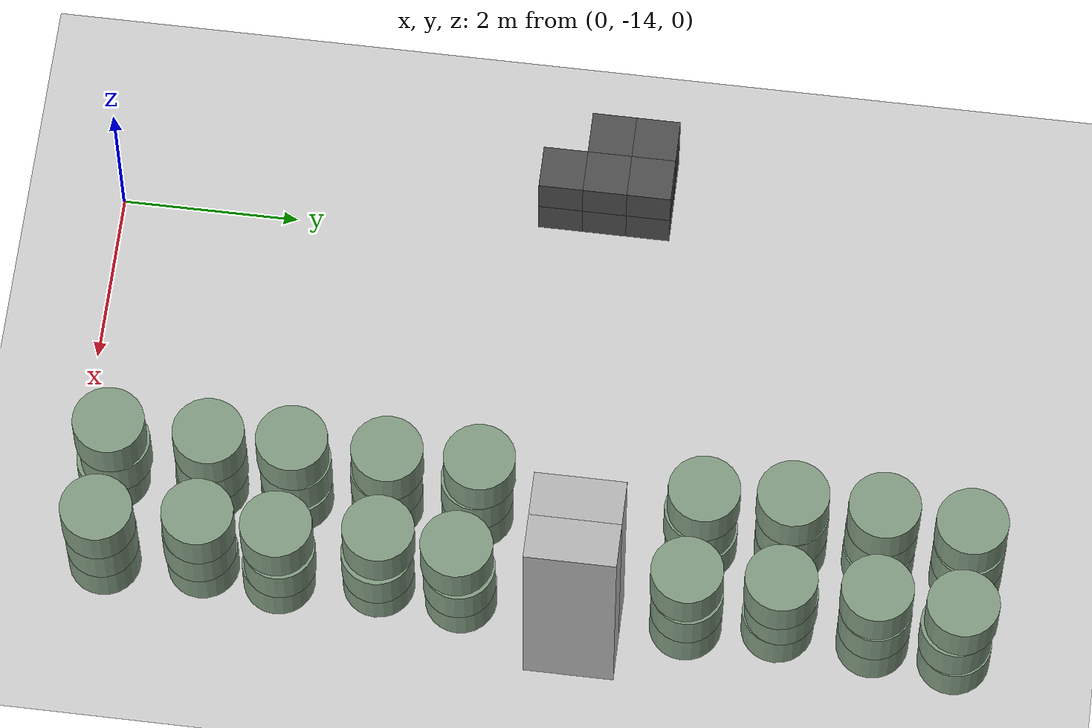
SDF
<sdf version="1.6">
 <world name="default">
  <include><uri>model://ground_plane</uri></include>
  <model name="wall_7">
   <pose>4.5 -8.25 1.5 0 -0 0</pose>
   <static>True</static>
   <link name="link">
    <inertial>
     <mass>100</mass>
     <inertia>
      <ixx>0.166667</ixx>
      <ixy>0</ixy>
      <ixz>0</ixz>
      <iyy>0.166667</iyy>
      <iyz>0</iyz>
      <izz>0.166667</izz>
     </inertia>
    </inertial>
    <collision name="collision"><geometry><box><size>0.5 1.0 3.0</size></box></geometry></collision>
    <visual name="visual">
     <geometry><box><size>0.5 1.0 3.0</size></box></geometry>
     <material><ambient>0.7 0.7 0.7 1</ambient><diffuse>0.7 0.7 0.7 1</diffuse></material>
    </visual>
   </link>
  </model>
  <model name="wall_10">
   <pose>5.0 -8.25 1.5 0 -0 0</pose>
   <static>True</static>
   <link name="link">
    <inertial>
     <mass>100</mass>
     <inertia>
      <ixx>0.166667</ixx>
      <ixy>0</ixy>
      <ixz>0</ixz>
      <iyy>0.166667</iyy>
      <iyz>0</iyz>
      <izz>0.166667</izz>
     </inertia>
    </inertial>
    <collision name="collision"><geometry><box><size>0.5 1.0 3.0</size></box></geometry></collision>
    <visual name="visual">
     <geometry><box><size>0.5 1.0 3.0</size></box></geometry>
     <material><ambient>0.7 0.7 0.7 1</ambient><diffuse>0.7 0.7 0.7 1</diffuse></material>
    </visual>
   </link>
  </model>
  <model name="unit_box_13">
   <pose>-1.0 -8.5 0.75 0 -0 0</pose>
   <static>True</static>
   <link name="link">
    <inertial>
     <mass>100</mass>
     <inertia>
      <ixx>0.166667</ixx>
      <ixy>0</ixy>
      <ixz>0</ixz>
      <iyy>0.166667</iyy>
      <iyz>0</iyz>
      <izz>0.166667</izz>
     </inertia>
    </inertial>
    <collision name="collision"><geometry><box><size>0.5 0.5 0.5</size></box></geometry></collision>
    <visual name="visual">
     <geometry><box><size>0.5 0.5 0.5</size></box></geometry>
     <material><ambient>0.3 0.3 0.3 1</ambient><diffuse>0.3 0.3 0.3 1</diffuse></material>
    </visual>
   </link>
  </model>
  <model name="unit_box_14">
   <pose>-1.0 -8.0 0.25 0 -0 0</pose>
   <static>True</static>
   <link name="link">
    <inertial>
     <mass>100</mass>
     <inertia>
      <ixx>0.166667</ixx>
      <ixy>0</ixy>
      <ixz>0</ixz>
      <iyy>0.166667</iyy>
      <iyz>0</iyz>
      <izz>0.166667</izz>
     </inertia>
    </inertial>
    <collision name="collision"><geometry><box><size>0.5 0.5 0.5</size></box></geometry></collision>
    <visual name="visual">
     <geometry><box><size>0.5 0.5 0.5</size></box></geometry>
     <material><ambient>0.3 0.3 0.3 1</ambient><diffuse>0.3 0.3 0.3 1</diffuse></material>
    </visual>
   </link>
  </model>
  <model name="unit_box_15">
   <pose>-1.0 -8.0 0.75 0 -0 0</pose>
   <static>True</static>
   <link name="link">
    <inertial>
     <mass>100</mass>
     <inertia>
      <ixx>0.166667</ixx>
      <ixy>0</ixy>
      <ixz>0</ixz>
      <iyy>0.166667</iyy>
      <iyz>0</iyz>
      <izz>0.166667</izz>
     </inertia>
    </inertial>
    <collision name="collision"><geometry><box><size>0.5 0.5 0.5</size></box></geometry></collision>
    <visual name="visual">
     <geometry><box><size>0.5 0.5 0.5</size></box></geometry>
     <material><ambient>0.3 0.3 0.3 1</ambient><diffuse>0.3 0.3 0.3 1</diffuse></material>
    </visual>
   </link>
  </model>
  <model name="unit_box_16">
   <pose>-0.5 -9.0 0.25 0 -0 0</pose>
   <static>True</static>
   <link name="link">
    <inertial>
     <mass>100</mass>
     <inertia>
      <ixx>0.166667</ixx>
      <ixy>0</ixy>
      <ixz>0</ixz>
      <iyy>0.166667</iyy>
      <iyz>0</iyz>
      <izz>0.166667</izz>
     </inertia>
    </inertial>
    <collision name="collision"><geometry><box><size>0.5 0.5 0.5</size></box></geometry></collision>
    <visual name="visual">
     <geometry><box><size>0.5 0.5 0.5</size></box></geometry>
     <material><ambient>0.3 0.3 0.3 1</ambient><diffuse>0.3 0.3 0.3 1</diffuse></material>
    </visual>
   </link>
  </model>
  <model name="unit_box_17">
   <pose>-0.5 -9.0 0.75 0 -0 0</pose>
   <static>True</static>
   <link name="link">
    <inertial>
     <mass>100</mass>
     <inertia>
      <ixx>0.166667</ixx>
      <ixy>0</ixy>
      <ixz>0</ixz>
      <iyy>0.166667</iyy>
      <iyz>0</iyz>
      <izz>0.166667</izz>
     </inertia>
    </inertial>
    <collision name="collision"><geometry><box><size>0.5 0.5 0.5</size></box></geometry></collision>
    <visual name="visual">
     <geometry><box><size>0.5 0.5 0.5</size></box></geometry>
     <material><ambient>0.3 0.3 0.3 1</ambient><diffuse>0.3 0.3 0.3 1</diffuse></material>
    </visual>
   </link>
  </model>
  <model name="unit_box_18">
   <pose>-0.5 -8.5 0.25 0 -0 0</pose>
   <static>True</static>
   <link name="link">
    <inertial>
     <mass>100</mass>
     <inertia>
      <ixx>0.166667</ixx>
      <ixy>0</ixy>
      <ixz>0</ixz>
      <iyy>0.166667</iyy>
      <iyz>0</iyz>
      <izz>0.166667</izz>
     </inertia>
    </inertial>
    <collision name="collision"><geometry><box><size>0.5 0.5 0.5</size></box></geometry></collision>
    <visual name="visual">
     <geometry><box><size>0.5 0.5 0.5</size></box></geometry>
     <material><ambient>0.3 0.3 0.3 1</ambient><diffuse>0.3 0.3 0.3 1</diffuse></material>
    </visual>
   </link>
  </model>
  <model name="unit_box_19">
   <pose>-0.5 -8.5 0.75 0 -0 0</pose>
   <static>True</static>
   <link name="link">
    <inertial>
     <mass>100</mass>
     <inertia>
      <ixx>0.166667</ixx>
      <ixy>0</ixy>
      <ixz>0</ixz>
      <iyy>0.166667</iyy>
      <iyz>0</iyz>
      <izz>0.166667</izz>
     </inertia>
    </inertial>
    <collision name="collision"><geometry><box><size>0.5 0.5 0.5</size></box></geometry></collision>
    <visual name="visual">
     <geometry><box><size>0.5 0.5 0.5</size></box></geometry>
     <material><ambient>0.3 0.3 0.3 1</ambient><diffuse>0.3 0.3 0.3 1</diffuse></material>
    </visual>
   </link>
  </model>
  <model name="unit_box_20">
   <pose>-0.5 -8.0 0.25 0 -0 0</pose>
   <static>True</static>
   <link name="link">
    <inertial>
     <mass>100</mass>
     <inertia>
      <ixx>0.166667</ixx>
      <ixy>0</ixy>
      <ixz>0</ixz>
      <iyy>0.166667</iyy>
      <iyz>0</iyz>
      <izz>0.166667</izz>
     </inertia>
    </inertial>
    <collision name="collision"><geometry><box><size>0.5 0.5 0.5</size></box></geometry></collision>
    <visual name="visual">
     <geometry><box><size>0.5 0.5 0.5</size></box></geometry>
     <material><ambient>0.3 0.3 0.3 1</ambient><diffuse>0.3 0.3 0.3 1</diffuse></material>
    </visual>
   </link>
  </model>
  <model name="unit_box_21">
   <pose>-0.5 -8.0 0.75 0 -0 0</pose>
   <static>True</static>
   <link name="link">
    <inertial>
     <mass>100</mass>
     <inertia>
      <ixx>0.166667</ixx>
      <ixy>0</ixy>
      <ixz>0</ixz>
      <iyy>0.166667</iyy>
      <iyz>0</iyz>
      <izz>0.166667</izz>
     </inertia>
    </inertial>
    <collision name="collision"><geometry><box><size>0.5 0.5 0.5</size></box></geometry></collision>
    <visual name="visual">
     <geometry><box><size>0.5 0.5 0.5</size></box></geometry>
     <material><ambient>0.3 0.3 0.3 1</ambient><diffuse>0.3 0.3 0.3 1</diffuse></material>
    </visual>
   </link>
  </model>
  <model name="unit_cylinder_120">
   <pose>3.48192407401 -13.5750649332 0.25 0 -0 0</pose>
   <static>True</static>
   <link name="link">
    <inertial>
     <mass>100</mass>
     <inertia><ixx>0.145833</ixx><ixy>0</ixy><ixz>0</ixz><iyy>0.145833</iyy><iyz>0</iyz><izz>0.125</izz></inertia>
    </inertial>
    <collision name="collision">
     <geometry><cylinder><radius>0.4</radius><length>0.5</length></cylinder></geometry>
     <max_contacts>100</max_contacts>
    </collision>
    <visual name="visual">
     <geometry><cylinder><radius>0.4</radius><length>0.5</length></cylinder></geometry>
     <material><ambient>0.5 0.6 0.5 1</ambient><diffuse>0.5 0.6 0.5 1</diffuse></material>
    </visual>
   </link>
  </model>
  <model name="unit_cylinder_121">
   <pose>3.47401796604 -13.5263370042 0.75 0 -0 0</pose>
   <static>True</static>
   <link name="link">
    <inertial>
     <mass>100</mass>
     <inertia><ixx>0.145833</ixx><ixy>0</ixy><ixz>0</ixz><iyy>0.145833</iyy><iyz>0</iyz><izz>0.125</izz></inertia>
    </inertial>
    <collision name="collision">
     <geometry><cylinder><radius>0.4</radius><length>0.5</length></cylinder></geometry>
     <max_contacts>100</max_contacts>
    </collision>
    <visual name="visual">
     <geometry><cylinder><radius>0.4</radius><length>0.5</length></cylinder></geometry>
     <material><ambient>0.5 0.6 0.5 1</ambient><diffuse>0.5 0.6 0.5 1</diffuse></material>
    </visual>
   </link>
  </model>
  <model name="unit_cylinder_122">
   <pose>3.48458854449 -13.5596657522 1.25 0 -0 0</pose>
   <static>True</static>
   <link name="link">
    <inertial>
     <mass>100</mass>
     <inertia><ixx>0.145833</ixx><ixy>0</ixy><ixz>0</ixz><iyy>0.145833</iyy><iyz>0</iyz><izz>0.125</izz></inertia>
    </inertial>
    <collision name="collision">
     <geometry><cylinder><radius>0.4</radius><length>0.5</length></cylinder></geometry>
     <max_contacts>100</max_contacts>
    </collision>
    <visual name="visual">
     <geometry><cylinder><radius>0.4</radius><length>0.5</length></cylinder></geometry>
     <material><ambient>0.5 0.6 0.5 1</ambient><diffuse>0.5 0.6 0.5 1</diffuse></material>
    </visual>
   </link>
  </model>
  <model name="unit_cylinder_123">
   <pose>3.47593592255 -12.46389825 0.25 0 -0 0</pose>
   <static>True</static>
   <link name="link">
    <inertial>
     <mass>100</mass>
     <inertia><ixx>0.145833</ixx><ixy>0</ixy><ixz>0</ixz><iyy>0.145833</iyy><iyz>0</iyz><izz>0.125</izz></inertia>
    </inertial>
    <collision name="collision">
     <geometry><cylinder><radius>0.4</radius><length>0.5</length></cylinder></geometry>
     <max_contacts>100</max_contacts>
    </collision>
    <visual name="visual">
     <geometry><cylinder><radius>0.4</radius><length>0.5</length></cylinder></geometry>
     <material><ambient>0.5 0.6 0.5 1</ambient><diffuse>0.5 0.6 0.5 1</diffuse></material>
    </visual>
   </link>
  </model>
  <model name="unit_cylinder_124">
   <pose>3.47823268688 -12.4491039058 0.75 0 -0 0</pose>
   <static>True</static>
   <link name="link">
    <inertial>
     <mass>100</mass>
     <inertia><ixx>0.145833</ixx><ixy>0</ixy><ixz>0</ixz><iyy>0.145833</iyy><iyz>0</iyz><izz>0.125</izz></inertia>
    </inertial>
    <collision name="collision">
     <geometry><cylinder><radius>0.4</radius><length>0.5</length></cylinder></geometry>
     <max_contacts>100</max_contacts>
    </collision>
    <visual name="visual">
     <geometry><cylinder><radius>0.4</radius><length>0.5</length></cylinder></geometry>
     <material><ambient>0.5 0.6 0.5 1</ambient><diffuse>0.5 0.6 0.5 1</diffuse></material>
    </visual>
   </link>
  </model>
  <model name="unit_cylinder_125">
   <pose>3.48412935911 -12.4509701474 1.25 0 -0 0</pose>
   <static>True</static>
   <link name="link">
    <inertial>
     <mass>100</mass>
     <inertia><ixx>0.145833</ixx><ixy>0</ixy><ixz>0</ixz><iyy>0.145833</iyy><iyz>0</iyz><izz>0.125</izz></inertia>
    </inertial>
    <collision name="collision">
     <geometry><cylinder><radius>0.4</radius><length>0.5</length></cylinder></geometry>
     <max_contacts>100</max_contacts>
    </collision>
    <visual name="visual">
     <geometry><cylinder><radius>0.4</radius><length>0.5</length></cylinder></geometry>
     <material><ambient>0.5 0.6 0.5 1</ambient><diffuse>0.5 0.6 0.5 1</diffuse></material>
    </visual>
   </link>
  </model>
  <model name="unit_cylinder_126">
   <pose>3.49154359732 -11.5032886017 0.25 0 -0 0</pose>
   <static>True</static>
   <link name="link">
    <inertial>
     <mass>100</mass>
     <inertia><ixx>0.145833</ixx><ixy>0</ixy><ixz>0</ixz><iyy>0.145833</iyy><iyz>0</iyz><izz>0.125</izz></inertia>
    </inertial>
    <collision name="collision">
     <geometry><cylinder><radius>0.4</radius><length>0.5</length></cylinder></geometry>
     <max_contacts>100</max_contacts>
    </collision>
    <visual name="visual">
     <geometry><cylinder><radius>0.4</radius><length>0.5</length></cylinder></geometry>
     <material><ambient>0.5 0.6 0.5 1</ambient><diffuse>0.5 0.6 0.5 1</diffuse></material>
    </visual>
   </link>
  </model>
  <model name="unit_cylinder_127">
   <pose>3.45846605834 -11.5073807653 0.75 0 -0 0</pose>
   <static>True</static>
   <link name="link">
    <inertial>
     <mass>100</mass>
     <inertia><ixx>0.145833</ixx><ixy>0</ixy><ixz>0</ixz><iyy>0.145833</iyy><iyz>0</iyz><izz>0.125</izz></inertia>
    </inertial>
    <collision name="collision">
     <geometry><cylinder><radius>0.4</radius><length>0.5</length></cylinder></geometry>
     <max_contacts>100</max_contacts>
    </collision>
    <visual name="visual">
     <geometry><cylinder><radius>0.4</radius><length>0.5</length></cylinder></geometry>
     <material><ambient>0.5 0.6 0.5 1</ambient><diffuse>0.5 0.6 0.5 1</diffuse></material>
    </visual>
   </link>
  </model>
  <model name="unit_cylinder_128">
   <pose>3.4563674604 -11.529332179 1.25 0 -0 0</pose>
   <static>True</static>
   <link name="link">
    <inertial>
     <mass>100</mass>
     <inertia><ixx>0.145833</ixx><ixy>0</ixy><ixz>0</ixz><iyy>0.145833</iyy><iyz>0</iyz><izz>0.125</izz></inertia>
    </inertial>
    <collision name="collision">
     <geometry><cylinder><radius>0.4</radius><length>0.5</length></cylinder></geometry>
     <max_contacts>100</max_contacts>
    </collision>
    <visual name="visual">
     <geometry><cylinder><radius>0.4</radius><length>0.5</length></cylinder></geometry>
     <material><ambient>0.5 0.6 0.5 1</ambient><diffuse>0.5 0.6 0.5 1</diffuse></material>
    </visual>
   </link>
  </model>
  <model name="unit_cylinder_129">
   <pose>3.45605927445 -10.4935702904 0.25 0 -0 0</pose>
   <static>True</static>
   <link name="link">
    <inertial>
     <mass>100</mass>
     <inertia><ixx>0.145833</ixx><ixy>0</ixy><ixz>0</ixz><iyy>0.145833</iyy><iyz>0</iyz><izz>0.125</izz></inertia>
    </inertial>
    <collision name="collision">
     <geometry><cylinder><radius>0.4</radius><length>0.5</length></cylinder></geometry>
     <max_contacts>100</max_contacts>
    </collision>
    <visual name="visual">
     <geometry><cylinder><radius>0.4</radius><length>0.5</length></cylinder></geometry>
     <material><ambient>0.5 0.6 0.5 1</ambient><diffuse>0.5 0.6 0.5 1</diffuse></material>
    </visual>
   </link>
  </model>
  <model name="unit_cylinder_130">
   <pose>3.462295615 -10.4932018744 0.75 0 -0 0</pose>
   <static>True</static>
   <link name="link">
    <inertial>
     <mass>100</mass>
     <inertia><ixx>0.145833</ixx><ixy>0</ixy><ixz>0</ixz><iyy>0.145833</iyy><iyz>0</iyz><izz>0.125</izz></inertia>
    </inertial>
    <collision name="collision">
     <geometry><cylinder><radius>0.4</radius><length>0.5</length></cylinder></geometry>
     <max_contacts>100</max_contacts>
    </collision>
    <visual name="visual">
     <geometry><cylinder><radius>0.4</radius><length>0.5</length></cylinder></geometry>
     <material><ambient>0.5 0.6 0.5 1</ambient><diffuse>0.5 0.6 0.5 1</diffuse></material>
    </visual>
   </link>
  </model>
  <model name="unit_cylinder_131">
   <pose>3.4603107666 -10.4735236708 1.25 0 -0 0</pose>
   <static>True</static>
   <link name="link">
    <inertial>
     <mass>100</mass>
     <inertia><ixx>0.145833</ixx><ixy>0</ixy><ixz>0</ixz><iyy>0.145833</iyy><iyz>0</iyz><izz>0.125</izz></inertia>
    </inertial>
    <collision name="collision">
     <geometry><cylinder><radius>0.4</radius><length>0.5</length></cylinder></geometry>
     <max_contacts>100</max_contacts>
    </collision>
    <visual name="visual">
     <geometry><cylinder><radius>0.4</radius><length>0.5</length></cylinder></geometry>
     <material><ambient>0.5 0.6 0.5 1</ambient><diffuse>0.5 0.6 0.5 1</diffuse></material>
    </visual>
   </link>
  </model>
  <model name="unit_cylinder_132">
   <pose>3.45102213264 -9.48496383676 0.25 0 -0 0</pose>
   <static>True</static>
   <link name="link">
    <inertial>
     <mass>100</mass>
     <inertia><ixx>0.145833</ixx><ixy>0</ixy><ixz>0</ixz><iyy>0.145833</iyy><iyz>0</iyz><izz>0.125</izz></inertia>
    </inertial>
    <collision name="collision">
     <geometry><cylinder><radius>0.4</radius><length>0.5</length></cylinder></geometry>
     <max_contacts>100</max_contacts>
    </collision>
    <visual name="visual">
     <geometry><cylinder><radius>0.4</radius><length>0.5</length></cylinder></geometry>
     <material><ambient>0.5 0.6 0.5 1</ambient><diffuse>0.5 0.6 0.5 1</diffuse></material>
    </visual>
   </link>
  </model>
  <model name="unit_cylinder_133">
   <pose>3.45010359709 -9.48591764724 0.75 0 -0 0</pose>
   <static>True</static>
   <link name="link">
    <inertial>
     <mass>100</mass>
     <inertia><ixx>0.145833</ixx><ixy>0</ixy><ixz>0</ixz><iyy>0.145833</iyy><iyz>0</iyz><izz>0.125</izz></inertia>
    </inertial>
    <collision name="collision">
     <geometry><cylinder><radius>0.4</radius><length>0.5</length></cylinder></geometry>
     <max_contacts>100</max_contacts>
    </collision>
    <visual name="visual">
     <geometry><cylinder><radius>0.4</radius><length>0.5</length></cylinder></geometry>
     <material><ambient>0.5 0.6 0.5 1</ambient><diffuse>0.5 0.6 0.5 1</diffuse></material>
    </visual>
   </link>
  </model>
  <model name="unit_cylinder_134">
   <pose>3.43525253562 -9.45428587302 1.25 0 -0 0</pose>
   <static>True</static>
   <link name="link">
    <inertial>
     <mass>100</mass>
     <inertia><ixx>0.145833</ixx><ixy>0</ixy><ixz>0</ixz><iyy>0.145833</iyy><iyz>0</iyz><izz>0.125</izz></inertia>
    </inertial>
    <collision name="collision">
     <geometry><cylinder><radius>0.4</radius><length>0.5</length></cylinder></geometry>
     <max_contacts>100</max_contacts>
    </collision>
    <visual name="visual">
     <geometry><cylinder><radius>0.4</radius><length>0.5</length></cylinder></geometry>
     <material><ambient>0.5 0.6 0.5 1</ambient><diffuse>0.5 0.6 0.5 1</diffuse></material>
    </visual>
   </link>
  </model>
  <model name="unit_cylinder_135">
   <pose>3.53594197343 -6.96994484491 0.25 0 -0 0</pose>
   <static>True</static>
   <link name="link">
    <inertial>
     <mass>100</mass>
     <inertia><ixx>0.145833</ixx><ixy>0</ixy><ixz>0</ixz><iyy>0.145833</iyy><iyz>0</iyz><izz>0.125</izz></inertia>
    </inertial>
    <collision name="collision">
     <geometry><cylinder><radius>0.4</radius><length>0.5</length></cylinder></geometry>
     <max_contacts>100</max_contacts>
    </collision>
    <visual name="visual">
     <geometry><cylinder><radius>0.4</radius><length>0.5</length></cylinder></geometry>
     <material><ambient>0.5 0.6 0.5 1</ambient><diffuse>0.5 0.6 0.5 1</diffuse></material>
    </visual>
   </link>
  </model>
  <model name="unit_cylinder_136">
   <pose>3.5273567928 -6.99577401718 0.75 0 -0 0</pose>
   <static>True</static>
   <link name="link">
    <inertial>
     <mass>100</mass>
     <inertia><ixx>0.145833</ixx><ixy>0</ixy><ixz>0</ixz><iyy>0.145833</iyy><iyz>0</iyz><izz>0.125</izz></inertia>
    </inertial>
    <collision name="collision">
     <geometry><cylinder><radius>0.4</radius><length>0.5</length></cylinder></geometry>
     <max_contacts>100</max_contacts>
    </collision>
    <visual name="visual">
     <geometry><cylinder><radius>0.4</radius><length>0.5</length></cylinder></geometry>
     <material><ambient>0.5 0.6 0.5 1</ambient><diffuse>0.5 0.6 0.5 1</diffuse></material>
    </visual>
   </link>
  </model>
  <model name="unit_cylinder_137">
   <pose>3.51790464709 -6.9650838057 1.25 0 -0 0</pose>
   <static>True</static>
   <link name="link">
    <inertial>
     <mass>100</mass>
     <inertia><ixx>0.145833</ixx><ixy>0</ixy><ixz>0</ixz><iyy>0.145833</iyy><iyz>0</iyz><izz>0.125</izz></inertia>
    </inertial>
    <collision name="collision">
     <geometry><cylinder><radius>0.4</radius><length>0.5</length></cylinder></geometry>
     <max_contacts>100</max_contacts>
    </collision>
    <visual name="visual">
     <geometry><cylinder><radius>0.4</radius><length>0.5</length></cylinder></geometry>
     <material><ambient>0.5 0.6 0.5 1</ambient><diffuse>0.5 0.6 0.5 1</diffuse></material>
    </visual>
   </link>
  </model>
  <model name="unit_cylinder_138">
   <pose>3.4701611872 -5.98039408088 0.25 0 -0 0</pose>
   <static>True</static>
   <link name="link">
    <inertial>
     <mass>100</mass>
     <inertia><ixx>0.145833</ixx><ixy>0</ixy><ixz>0</ixz><iyy>0.145833</iyy><iyz>0</iyz><izz>0.125</izz></inertia>
    </inertial>
    <collision name="collision">
     <geometry><cylinder><radius>0.4</radius><length>0.5</length></cylinder></geometry>
     <max_contacts>100</max_contacts>
    </collision>
    <visual name="visual">
     <geometry><cylinder><radius>0.4</radius><length>0.5</length></cylinder></geometry>
     <material><ambient>0.5 0.6 0.5 1</ambient><diffuse>0.5 0.6 0.5 1</diffuse></material>
    </visual>
   </link>
  </model>
  <model name="unit_cylinder_139">
   <pose>3.45960045967 -5.98118536503 0.75 0 -0 0</pose>
   <static>True</static>
   <link name="link">
    <inertial>
     <mass>100</mass>
     <inertia><ixx>0.145833</ixx><ixy>0</ixy><ixz>0</ixz><iyy>0.145833</iyy><iyz>0</iyz><izz>0.125</izz></inertia>
    </inertial>
    <collision name="collision">
     <geometry><cylinder><radius>0.4</radius><length>0.5</length></cylinder></geometry>
     <max_contacts>100</max_contacts>
    </collision>
    <visual name="visual">
     <geometry><cylinder><radius>0.4</radius><length>0.5</length></cylinder></geometry>
     <material><ambient>0.5 0.6 0.5 1</ambient><diffuse>0.5 0.6 0.5 1</diffuse></material>
    </visual>
   </link>
  </model>
  <model name="unit_cylinder_140">
   <pose>3.45512032041 -5.9929395183 1.25 0 -0 0</pose>
   <static>True</static>
   <link name="link">
    <inertial>
     <mass>100</mass>
     <inertia><ixx>0.145833</ixx><ixy>0</ixy><ixz>0</ixz><iyy>0.145833</iyy><iyz>0</iyz><izz>0.125</izz></inertia>
    </inertial>
    <collision name="collision">
     <geometry><cylinder><radius>0.4</radius><length>0.5</length></cylinder></geometry>
     <max_contacts>100</max_contacts>
    </collision>
    <visual name="visual">
     <geometry><cylinder><radius>0.4</radius><length>0.5</length></cylinder></geometry>
     <material><ambient>0.5 0.6 0.5 1</ambient><diffuse>0.5 0.6 0.5 1</diffuse></material>
    </visual>
   </link>
  </model>
  <model name="unit_cylinder_141">
   <pose>3.4954276355 -4.99848301147 0.25 0 -0 0</pose>
   <static>True</static>
   <link name="link">
    <inertial>
     <mass>100</mass>
     <inertia><ixx>0.145833</ixx><ixy>0</ixy><ixz>0</ixz><iyy>0.145833</iyy><iyz>0</iyz><izz>0.125</izz></inertia>
    </inertial>
    <collision name="collision">
     <geometry><cylinder><radius>0.4</radius><length>0.5</length></cylinder></geometry>
     <max_contacts>100</max_contacts>
    </collision>
    <visual name="visual">
     <geometry><cylinder><radius>0.4</radius><length>0.5</length></cylinder></geometry>
     <material><ambient>0.5 0.6 0.5 1</ambient><diffuse>0.5 0.6 0.5 1</diffuse></material>
    </visual>
   </link>
  </model>
  <model name="unit_cylinder_142">
   <pose>3.4689222102 -4.99186350636 0.75 0 -0 0</pose>
   <static>True</static>
   <link name="link">
    <inertial>
     <mass>100</mass>
     <inertia><ixx>0.145833</ixx><ixy>0</ixy><ixz>0</ixz><iyy>0.145833</iyy><iyz>0</iyz><izz>0.125</izz></inertia>
    </inertial>
    <collision name="collision">
     <geometry><cylinder><radius>0.4</radius><length>0.5</length></cylinder></geometry>
     <max_contacts>100</max_contacts>
    </collision>
    <visual name="visual">
     <geometry><cylinder><radius>0.4</radius><length>0.5</length></cylinder></geometry>
     <material><ambient>0.5 0.6 0.5 1</ambient><diffuse>0.5 0.6 0.5 1</diffuse></material>
    </visual>
   </link>
  </model>
  <model name="unit_cylinder_143">
   <pose>3.47306062864 -4.98596763131 1.25 0 -0 0</pose>
   <static>True</static>
   <link name="link">
    <inertial>
     <mass>100</mass>
     <inertia><ixx>0.145833</ixx><ixy>0</ixy><ixz>0</ixz><iyy>0.145833</iyy><iyz>0</iyz><izz>0.125</izz></inertia>
    </inertial>
    <collision name="collision">
     <geometry><cylinder><radius>0.4</radius><length>0.5</length></cylinder></geometry>
     <max_contacts>100</max_contacts>
    </collision>
    <visual name="visual">
     <geometry><cylinder><radius>0.4</radius><length>0.5</length></cylinder></geometry>
     <material><ambient>0.5 0.6 0.5 1</ambient><diffuse>0.5 0.6 0.5 1</diffuse></material>
    </visual>
   </link>
  </model>
  <model name="unit_cylinder_144">
   <pose>3.56919262583 -4.01535812351 0.25 0 -0 0</pose>
   <static>True</static>
   <link name="link">
    <inertial>
     <mass>100</mass>
     <inertia><ixx>0.145833</ixx><ixy>0</ixy><ixz>0</ixz><iyy>0.145833</iyy><iyz>0</iyz><izz>0.125</izz></inertia>
    </inertial>
    <collision name="collision">
     <geometry><cylinder><radius>0.4</radius><length>0.5</length></cylinder></geometry>
     <max_contacts>100</max_contacts>
    </collision>
    <visual name="visual">
     <geometry><cylinder><radius>0.4</radius><length>0.5</length></cylinder></geometry>
     <material><ambient>0.5 0.6 0.5 1</ambient><diffuse>0.5 0.6 0.5 1</diffuse></material>
    </visual>
   </link>
  </model>
  <model name="unit_cylinder_145">
   <pose>3.57857013074 -4.01534762438 0.75 0 -0 0</pose>
   <static>True</static>
   <link name="link">
    <inertial>
     <mass>100</mass>
     <inertia><ixx>0.145833</ixx><ixy>0</ixy><ixz>0</ixz><iyy>0.145833</iyy><iyz>0</iyz><izz>0.125</izz></inertia>
    </inertial>
    <collision name="collision">
     <geometry><cylinder><radius>0.4</radius><length>0.5</length></cylinder></geometry>
     <max_contacts>100</max_contacts>
    </collision>
    <visual name="visual">
     <geometry><cylinder><radius>0.4</radius><length>0.5</length></cylinder></geometry>
     <material><ambient>0.5 0.6 0.5 1</ambient><diffuse>0.5 0.6 0.5 1</diffuse></material>
    </visual>
   </link>
  </model>
  <model name="unit_cylinder_146">
   <pose>3.55111507525 -4.01868809965 1.25 0 -0 0</pose>
   <static>True</static>
   <link name="link">
    <inertial>
     <mass>100</mass>
     <inertia><ixx>0.145833</ixx><ixy>0</ixy><ixz>0</ixz><iyy>0.145833</iyy><iyz>0</iyz><izz>0.125</izz></inertia>
    </inertial>
    <collision name="collision">
     <geometry><cylinder><radius>0.4</radius><length>0.5</length></cylinder></geometry>
     <max_contacts>100</max_contacts>
    </collision>
    <visual name="visual">
     <geometry><cylinder><radius>0.4</radius><length>0.5</length></cylinder></geometry>
     <material><ambient>0.5 0.6 0.5 1</ambient><diffuse>0.5 0.6 0.5 1</diffuse></material>
    </visual>
   </link>
  </model>
  <model name="unit_cylinder_168">
   <pose>4.51769470714 -13.5255414279 0.25 0 -0 0</pose>
   <static>True</static>
   <link name="link">
    <inertial>
     <mass>100</mass>
     <inertia><ixx>0.145833</ixx><ixy>0</ixy><ixz>0</ixz><iyy>0.145833</iyy><iyz>0</iyz><izz>0.125</izz></inertia>
    </inertial>
    <collision name="collision">
     <geometry><cylinder><radius>0.4</radius><length>0.5</length></cylinder></geometry>
     <max_contacts>100</max_contacts>
    </collision>
    <visual name="visual">
     <geometry><cylinder><radius>0.4</radius><length>0.5</length></cylinder></geometry>
     <material><ambient>0.5 0.6 0.5 1</ambient><diffuse>0.5 0.6 0.5 1</diffuse></material>
    </visual>
   </link>
  </model>
  <model name="unit_cylinder_169">
   <pose>4.53229357337 -13.5234182879 0.75 0 -0 0</pose>
   <static>True</static>
   <link name="link">
    <inertial>
     <mass>100</mass>
     <inertia><ixx>0.145833</ixx><ixy>0</ixy><ixz>0</ixz><iyy>0.145833</iyy><iyz>0</iyz><izz>0.125</izz></inertia>
    </inertial>
    <collision name="collision">
     <geometry><cylinder><radius>0.4</radius><length>0.5</length></cylinder></geometry>
     <max_contacts>100</max_contacts>
    </collision>
    <visual name="visual">
     <geometry><cylinder><radius>0.4</radius><length>0.5</length></cylinder></geometry>
     <material><ambient>0.5 0.6 0.5 1</ambient><diffuse>0.5 0.6 0.5 1</diffuse></material>
    </visual>
   </link>
  </model>
  <model name="unit_cylinder_170">
   <pose>4.54289212008 -13.5335039149 1.25 0 -0 0</pose>
   <static>True</static>
   <link name="link">
    <inertial>
     <mass>100</mass>
     <inertia><ixx>0.145833</ixx><ixy>0</ixy><ixz>0</ixz><iyy>0.145833</iyy><iyz>0</iyz><izz>0.125</izz></inertia>
    </inertial>
    <collision name="collision">
     <geometry><cylinder><radius>0.4</radius><length>0.5</length></cylinder></geometry>
     <max_contacts>100</max_contacts>
    </collision>
    <visual name="visual">
     <geometry><cylinder><radius>0.4</radius><length>0.5</length></cylinder></geometry>
     <material><ambient>0.5 0.6 0.5 1</ambient><diffuse>0.5 0.6 0.5 1</diffuse></material>
    </visual>
   </link>
  </model>
  <model name="unit_cylinder_171">
   <pose>4.42624965472 -12.4306376182 0.25 0 -0 0</pose>
   <static>True</static>
   <link name="link">
    <inertial>
     <mass>100</mass>
     <inertia><ixx>0.145833</ixx><ixy>0</ixy><ixz>0</ixz><iyy>0.145833</iyy><iyz>0</iyz><izz>0.125</izz></inertia>
    </inertial>
    <collision name="collision">
     <geometry><cylinder><radius>0.4</radius><length>0.5</length></cylinder></geometry>
     <max_contacts>100</max_contacts>
    </collision>
    <visual name="visual">
     <geometry><cylinder><radius>0.4</radius><length>0.5</length></cylinder></geometry>
     <material><ambient>0.5 0.6 0.5 1</ambient><diffuse>0.5 0.6 0.5 1</diffuse></material>
    </visual>
   </link>
  </model>
  <model name="unit_cylinder_172">
   <pose>4.45846754077 -12.4430164517 0.75 0 -0 0</pose>
   <static>True</static>
   <link name="link">
    <inertial>
     <mass>100</mass>
     <inertia><ixx>0.145833</ixx><ixy>0</ixy><ixz>0</ixz><iyy>0.145833</iyy><iyz>0</iyz><izz>0.125</izz></inertia>
    </inertial>
    <collision name="collision">
     <geometry><cylinder><radius>0.4</radius><length>0.5</length></cylinder></geometry>
     <max_contacts>100</max_contacts>
    </collision>
    <visual name="visual">
     <geometry><cylinder><radius>0.4</radius><length>0.5</length></cylinder></geometry>
     <material><ambient>0.5 0.6 0.5 1</ambient><diffuse>0.5 0.6 0.5 1</diffuse></material>
    </visual>
   </link>
  </model>
  <model name="unit_cylinder_173">
   <pose>4.4652295289 -12.4281681825 1.25 0 -0 0</pose>
   <static>True</static>
   <link name="link">
    <inertial>
     <mass>100</mass>
     <inertia><ixx>0.145833</ixx><ixy>0</ixy><ixz>0</ixz><iyy>0.145833</iyy><iyz>0</iyz><izz>0.125</izz></inertia>
    </inertial>
    <collision name="collision">
     <geometry><cylinder><radius>0.4</radius><length>0.5</length></cylinder></geometry>
     <max_contacts>100</max_contacts>
    </collision>
    <visual name="visual">
     <geometry><cylinder><radius>0.4</radius><length>0.5</length></cylinder></geometry>
     <material><ambient>0.5 0.6 0.5 1</ambient><diffuse>0.5 0.6 0.5 1</diffuse></material>
    </visual>
   </link>
  </model>
  <model name="unit_cylinder_174">
   <pose>4.51579199175 -11.5674333628 0.25 0 -0 0</pose>
   <static>True</static>
   <link name="link">
    <inertial>
     <mass>100</mass>
     <inertia><ixx>0.145833</ixx><ixy>0</ixy><ixz>0</ixz><iyy>0.145833</iyy><iyz>0</iyz><izz>0.125</izz></inertia>
    </inertial>
    <collision name="collision">
     <geometry><cylinder><radius>0.4</radius><length>0.5</length></cylinder></geometry>
     <max_contacts>100</max_contacts>
    </collision>
    <visual name="visual">
     <geometry><cylinder><radius>0.4</radius><length>0.5</length></cylinder></geometry>
     <material><ambient>0.5 0.6 0.5 1</ambient><diffuse>0.5 0.6 0.5 1</diffuse></material>
    </visual>
   </link>
  </model>
  <model name="unit_cylinder_175">
   <pose>4.5399692021 -11.5356246799 0.75 0 -0 0</pose>
   <static>True</static>
   <link name="link">
    <inertial>
     <mass>100</mass>
     <inertia><ixx>0.145833</ixx><ixy>0</ixy><ixz>0</ixz><iyy>0.145833</iyy><iyz>0</iyz><izz>0.125</izz></inertia>
    </inertial>
    <collision name="collision">
     <geometry><cylinder><radius>0.4</radius><length>0.5</length></cylinder></geometry>
     <max_contacts>100</max_contacts>
    </collision>
    <visual name="visual">
     <geometry><cylinder><radius>0.4</radius><length>0.5</length></cylinder></geometry>
     <material><ambient>0.5 0.6 0.5 1</ambient><diffuse>0.5 0.6 0.5 1</diffuse></material>
    </visual>
   </link>
  </model>
  <model name="unit_cylinder_176">
   <pose>4.50579534244 -11.5556774042 1.25 0 -0 0</pose>
   <static>True</static>
   <link name="link">
    <inertial>
     <mass>100</mass>
     <inertia><ixx>0.145833</ixx><ixy>0</ixy><ixz>0</ixz><iyy>0.145833</iyy><iyz>0</iyz><izz>0.125</izz></inertia>
    </inertial>
    <collision name="collision">
     <geometry><cylinder><radius>0.4</radius><length>0.5</length></cylinder></geometry>
     <max_contacts>100</max_contacts>
    </collision>
    <visual name="visual">
     <geometry><cylinder><radius>0.4</radius><length>0.5</length></cylinder></geometry>
     <material><ambient>0.5 0.6 0.5 1</ambient><diffuse>0.5 0.6 0.5 1</diffuse></material>
    </visual>
   </link>
  </model>
  <model name="unit_cylinder_177">
   <pose>4.41934923239 -10.4633750846 0.25 0 -0 0</pose>
   <static>True</static>
   <link name="link">
    <inertial>
     <mass>100</mass>
     <inertia><ixx>0.145833</ixx><ixy>0</ixy><ixz>0</ixz><iyy>0.145833</iyy><iyz>0</iyz><izz>0.125</izz></inertia>
    </inertial>
    <collision name="collision">
     <geometry><cylinder><radius>0.4</radius><length>0.5</length></cylinder></geometry>
     <max_contacts>100</max_contacts>
    </collision>
    <visual name="visual">
     <geometry><cylinder><radius>0.4</radius><length>0.5</length></cylinder></geometry>
     <material><ambient>0.5 0.6 0.5 1</ambient><diffuse>0.5 0.6 0.5 1</diffuse></material>
    </visual>
   </link>
  </model>
  <model name="unit_cylinder_178">
   <pose>4.47361874558 -10.458393351 0.75 0 -0 0</pose>
   <static>True</static>
   <link name="link">
    <inertial>
     <mass>100</mass>
     <inertia><ixx>0.145833</ixx><ixy>0</ixy><ixz>0</ixz><iyy>0.145833</iyy><iyz>0</iyz><izz>0.125</izz></inertia>
    </inertial>
    <collision name="collision">
     <geometry><cylinder><radius>0.4</radius><length>0.5</length></cylinder></geometry>
     <max_contacts>100</max_contacts>
    </collision>
    <visual name="visual">
     <geometry><cylinder><radius>0.4</radius><length>0.5</length></cylinder></geometry>
     <material><ambient>0.5 0.6 0.5 1</ambient><diffuse>0.5 0.6 0.5 1</diffuse></material>
    </visual>
   </link>
  </model>
  <model name="unit_cylinder_179">
   <pose>4.41921522329 -10.4435038911 1.25 0 -0 0</pose>
   <static>True</static>
   <link name="link">
    <inertial>
     <mass>100</mass>
     <inertia><ixx>0.145833</ixx><ixy>0</ixy><ixz>0</ixz><iyy>0.145833</iyy><iyz>0</iyz><izz>0.125</izz></inertia>
    </inertial>
    <collision name="collision">
     <geometry><cylinder><radius>0.4</radius><length>0.5</length></cylinder></geometry>
     <max_contacts>100</max_contacts>
    </collision>
    <visual name="visual">
     <geometry><cylinder><radius>0.4</radius><length>0.5</length></cylinder></geometry>
     <material><ambient>0.5 0.6 0.5 1</ambient><diffuse>0.5 0.6 0.5 1</diffuse></material>
    </visual>
   </link>
  </model>
  <model name="unit_cylinder_180">
   <pose>4.49822398091 -9.53682540827 0.25 0 -0 0</pose>
   <static>True</static>
   <link name="link">
    <inertial>
     <mass>100</mass>
     <inertia><ixx>0.145833</ixx><ixy>0</ixy><ixz>0</ixz><iyy>0.145833</iyy><iyz>0</iyz><izz>0.125</izz></inertia>
    </inertial>
    <collision name="collision">
     <geometry><cylinder><radius>0.4</radius><length>0.5</length></cylinder></geometry>
     <max_contacts>100</max_contacts>
    </collision>
    <visual name="visual">
     <geometry><cylinder><radius>0.4</radius><length>0.5</length></cylinder></geometry>
     <material><ambient>0.5 0.6 0.5 1</ambient><diffuse>0.5 0.6 0.5 1</diffuse></material>
    </visual>
   </link>
  </model>
  <model name="unit_cylinder_181">
   <pose>4.53874049164 -9.54541073248 0.75 0 -0 0</pose>
   <static>True</static>
   <link name="link">
    <inertial>
     <mass>100</mass>
     <inertia><ixx>0.145833</ixx><ixy>0</ixy><ixz>0</ixz><iyy>0.145833</iyy><iyz>0</iyz><izz>0.125</izz></inertia>
    </inertial>
    <collision name="collision">
     <geometry><cylinder><radius>0.4</radius><length>0.5</length></cylinder></geometry>
     <max_contacts>100</max_contacts>
    </collision>
    <visual name="visual">
     <geometry><cylinder><radius>0.4</radius><length>0.5</length></cylinder></geometry>
     <material><ambient>0.5 0.6 0.5 1</ambient><diffuse>0.5 0.6 0.5 1</diffuse></material>
    </visual>
   </link>
  </model>
  <model name="unit_cylinder_182">
   <pose>4.50311135134 -9.57187344548 1.25 0 -0 0</pose>
   <static>True</static>
   <link name="link">
    <inertial>
     <mass>100</mass>
     <inertia><ixx>0.145833</ixx><ixy>0</ixy><ixz>0</ixz><iyy>0.145833</iyy><iyz>0</iyz><izz>0.125</izz></inertia>
    </inertial>
    <collision name="collision">
     <geometry><cylinder><radius>0.4</radius><length>0.5</length></cylinder></geometry>
     <max_contacts>100</max_contacts>
    </collision>
    <visual name="visual">
     <geometry><cylinder><radius>0.4</radius><length>0.5</length></cylinder></geometry>
     <material><ambient>0.5 0.6 0.5 1</ambient><diffuse>0.5 0.6 0.5 1</diffuse></material>
    </visual>
   </link>
  </model>
  <model name="unit_cylinder_183">
   <pose>4.51992228693 -7.03154743951 0.25 0 -0 0</pose>
   <static>True</static>
   <link name="link">
    <inertial>
     <mass>100</mass>
     <inertia><ixx>0.145833</ixx><ixy>0</ixy><ixz>0</ixz><iyy>0.145833</iyy><iyz>0</iyz><izz>0.125</izz></inertia>
    </inertial>
    <collision name="collision">
     <geometry><cylinder><radius>0.4</radius><length>0.5</length></cylinder></geometry>
     <max_contacts>100</max_contacts>
    </collision>
    <visual name="visual">
     <geometry><cylinder><radius>0.4</radius><length>0.5</length></cylinder></geometry>
     <material><ambient>0.5 0.6 0.5 1</ambient><diffuse>0.5 0.6 0.5 1</diffuse></material>
    </visual>
   </link>
  </model>
  <model name="unit_cylinder_184">
   <pose>4.53315555519 -7.02807124569 0.75 0 -0 0</pose>
   <static>True</static>
   <link name="link">
    <inertial>
     <mass>100</mass>
     <inertia><ixx>0.145833</ixx><ixy>0</ixy><ixz>0</ixz><iyy>0.145833</iyy><iyz>0</iyz><izz>0.125</izz></inertia>
    </inertial>
    <collision name="collision">
     <geometry><cylinder><radius>0.4</radius><length>0.5</length></cylinder></geometry>
     <max_contacts>100</max_contacts>
    </collision>
    <visual name="visual">
     <geometry><cylinder><radius>0.4</radius><length>0.5</length></cylinder></geometry>
     <material><ambient>0.5 0.6 0.5 1</ambient><diffuse>0.5 0.6 0.5 1</diffuse></material>
    </visual>
   </link>
  </model>
  <model name="unit_cylinder_185">
   <pose>4.50482444673 -7.04469630051 1.25 0 -0 0</pose>
   <static>True</static>
   <link name="link">
    <inertial>
     <mass>100</mass>
     <inertia><ixx>0.145833</ixx><ixy>0</ixy><ixz>0</ixz><iyy>0.145833</iyy><iyz>0</iyz><izz>0.125</izz></inertia>
    </inertial>
    <collision name="collision">
     <geometry><cylinder><radius>0.4</radius><length>0.5</length></cylinder></geometry>
     <max_contacts>100</max_contacts>
    </collision>
    <visual name="visual">
     <geometry><cylinder><radius>0.4</radius><length>0.5</length></cylinder></geometry>
     <material><ambient>0.5 0.6 0.5 1</ambient><diffuse>0.5 0.6 0.5 1</diffuse></material>
    </visual>
   </link>
  </model>
  <model name="unit_cylinder_186">
   <pose>4.42618565334 -6.02189030658 0.25 0 -0 0</pose>
   <static>True</static>
   <link name="link">
    <inertial>
     <mass>100</mass>
     <inertia><ixx>0.145833</ixx><ixy>0</ixy><ixz>0</ixz><iyy>0.145833</iyy><iyz>0</iyz><izz>0.125</izz></inertia>
    </inertial>
    <collision name="collision">
     <geometry><cylinder><radius>0.4</radius><length>0.5</length></cylinder></geometry>
     <max_contacts>100</max_contacts>
    </collision>
    <visual name="visual">
     <geometry><cylinder><radius>0.4</radius><length>0.5</length></cylinder></geometry>
     <material><ambient>0.5 0.6 0.5 1</ambient><diffuse>0.5 0.6 0.5 1</diffuse></material>
    </visual>
   </link>
  </model>
  <model name="unit_cylinder_187">
   <pose>4.43238764987 -5.99721459876 0.75 0 -0 0</pose>
   <static>True</static>
   <link name="link">
    <inertial>
     <mass>100</mass>
     <inertia><ixx>0.145833</ixx><ixy>0</ixy><ixz>0</ixz><iyy>0.145833</iyy><iyz>0</iyz><izz>0.125</izz></inertia>
    </inertial>
    <collision name="collision">
     <geometry><cylinder><radius>0.4</radius><length>0.5</length></cylinder></geometry>
     <max_contacts>100</max_contacts>
    </collision>
    <visual name="visual">
     <geometry><cylinder><radius>0.4</radius><length>0.5</length></cylinder></geometry>
     <material><ambient>0.5 0.6 0.5 1</ambient><diffuse>0.5 0.6 0.5 1</diffuse></material>
    </visual>
   </link>
  </model>
  <model name="unit_cylinder_188">
   <pose>4.47383947466 -6.01849328518 1.25 0 -0 0</pose>
   <static>True</static>
   <link name="link">
    <inertial>
     <mass>100</mass>
     <inertia><ixx>0.145833</ixx><ixy>0</ixy><ixz>0</ixz><iyy>0.145833</iyy><iyz>0</iyz><izz>0.125</izz></inertia>
    </inertial>
    <collision name="collision">
     <geometry><cylinder><radius>0.4</radius><length>0.5</length></cylinder></geometry>
     <max_contacts>100</max_contacts>
    </collision>
    <visual name="visual">
     <geometry><cylinder><radius>0.4</radius><length>0.5</length></cylinder></geometry>
     <material><ambient>0.5 0.6 0.5 1</ambient><diffuse>0.5 0.6 0.5 1</diffuse></material>
    </visual>
   </link>
  </model>
  <model name="unit_cylinder_189">
   <pose>4.48274199379 -4.96209651071 0.25 0 -0 0</pose>
   <static>True</static>
   <link name="link">
    <inertial>
     <mass>100</mass>
     <inertia><ixx>0.145833</ixx><ixy>0</ixy><ixz>0</ixz><iyy>0.145833</iyy><iyz>0</iyz><izz>0.125</izz></inertia>
    </inertial>
    <collision name="collision">
     <geometry><cylinder><radius>0.4</radius><length>0.5</length></cylinder></geometry>
     <max_contacts>100</max_contacts>
    </collision>
    <visual name="visual">
     <geometry><cylinder><radius>0.4</radius><length>0.5</length></cylinder></geometry>
     <material><ambient>0.5 0.6 0.5 1</ambient><diffuse>0.5 0.6 0.5 1</diffuse></material>
    </visual>
   </link>
  </model>
  <model name="unit_cylinder_190">
   <pose>4.48398378421 -4.9621150811 0.75 0 -0 0</pose>
   <static>True</static>
   <link name="link">
    <inertial>
     <mass>100</mass>
     <inertia><ixx>0.145833</ixx><ixy>0</ixy><ixz>0</ixz><iyy>0.145833</iyy><iyz>0</iyz><izz>0.125</izz></inertia>
    </inertial>
    <collision name="collision">
     <geometry><cylinder><radius>0.4</radius><length>0.5</length></cylinder></geometry>
     <max_contacts>100</max_contacts>
    </collision>
    <visual name="visual">
     <geometry><cylinder><radius>0.4</radius><length>0.5</length></cylinder></geometry>
     <material><ambient>0.5 0.6 0.5 1</ambient><diffuse>0.5 0.6 0.5 1</diffuse></material>
    </visual>
   </link>
  </model>
  <model name="unit_cylinder_191">
   <pose>4.4665948695 -4.96902557291 1.25 0 -0 0</pose>
   <static>True</static>
   <link name="link">
    <inertial>
     <mass>100</mass>
     <inertia><ixx>0.145833</ixx><ixy>0</ixy><ixz>0</ixz><iyy>0.145833</iyy><iyz>0</iyz><izz>0.125</izz></inertia>
    </inertial>
    <collision name="collision">
     <geometry><cylinder><radius>0.4</radius><length>0.5</length></cylinder></geometry>
     <max_contacts>100</max_contacts>
    </collision>
    <visual name="visual">
     <geometry><cylinder><radius>0.4</radius><length>0.5</length></cylinder></geometry>
     <material><ambient>0.5 0.6 0.5 1</ambient><diffuse>0.5 0.6 0.5 1</diffuse></material>
    </visual>
   </link>
  </model>
  <model name="unit_cylinder_192">
   <pose>4.57301448818 -4.05307363893 0.25 0 -0 0</pose>
   <static>True</static>
   <link name="link">
    <inertial>
     <mass>100</mass>
     <inertia><ixx>0.145833</ixx><ixy>0</ixy><ixz>0</ixz><iyy>0.145833</iyy><iyz>0</iyz><izz>0.125</izz></inertia>
    </inertial>
    <collision name="collision">
     <geometry><cylinder><radius>0.4</radius><length>0.5</length></cylinder></geometry>
     <max_contacts>100</max_contacts>
    </collision>
    <visual name="visual">
     <geometry><cylinder><radius>0.4</radius><length>0.5</length></cylinder></geometry>
     <material><ambient>0.5 0.6 0.5 1</ambient><diffuse>0.5 0.6 0.5 1</diffuse></material>
    </visual>
   </link>
  </model>
  <model name="unit_cylinder_193">
   <pose>4.55609334092 -4.06841397833 0.75 0 -0 0</pose>
   <static>True</static>
   <link name="link">
    <inertial>
     <mass>100</mass>
     <inertia><ixx>0.145833</ixx><ixy>0</ixy><ixz>0</ixz><iyy>0.145833</iyy><iyz>0</iyz><izz>0.125</izz></inertia>
    </inertial>
    <collision name="collision">
     <geometry><cylinder><radius>0.4</radius><length>0.5</length></cylinder></geometry>
     <max_contacts>100</max_contacts>
    </collision>
    <visual name="visual">
     <geometry><cylinder><radius>0.4</radius><length>0.5</length></cylinder></geometry>
     <material><ambient>0.5 0.6 0.5 1</ambient><diffuse>0.5 0.6 0.5 1</diffuse></material>
    </visual>
   </link>
  </model>
  <model name="unit_cylinder_194">
   <pose>4.53333527996 -4.03072557063 1.25 0 -0 0</pose>
   <static>True</static>
   <link name="link">
    <inertial>
     <mass>100</mass>
     <inertia><ixx>0.145833</ixx><ixy>0</ixy><ixz>0</ixz><iyy>0.145833</iyy><iyz>0</iyz><izz>0.125</izz></inertia>
    </inertial>
    <collision name="collision">
     <geometry><cylinder><radius>0.4</radius><length>0.5</length></cylinder></geometry>
     <max_contacts>100</max_contacts>
    </collision>
    <visual name="visual">
     <geometry><cylinder><radius>0.4</radius><length>0.5</length></cylinder></geometry>
     <material><ambient>0.5 0.6 0.5 1</ambient><diffuse>0.5 0.6 0.5 1</diffuse></material>
    </visual>
   </link>
  </model>
 </world>
</sdf>
